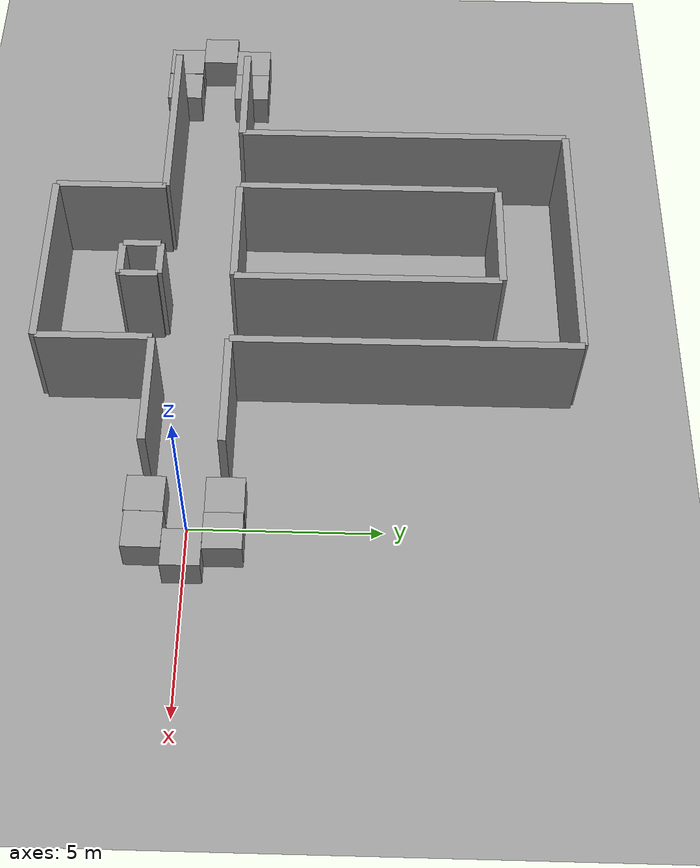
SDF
<sdf version="1.4">
 <world name="default">
  <light name="sun" type="directional">
   <pose>0 0 10 0 -0 0</pose>
   <diffuse>0.8 0.8 0.8 1</diffuse>
   <specular>0.2 0.2 0.2 1</specular>
   <attenuation>
    <range>1000</range>
    <constant>0.9</constant>
    <linear>0.01</linear>
    <quadratic>0.001</quadratic>
   </attenuation>
   <direction>0.5 0.1 -0.9</direction>
  </light>
  <scene><ambient>0.4 0.4 0.4 1</ambient><background>0.7 0.7 0.7 1</background><shadows>1</shadows></scene>
  <physics type="ode">
   <max_step_size>0.01</max_step_size>
   <real_time_factor>1</real_time_factor>
   <real_time_update_rate>100</real_time_update_rate>
   <gravity>0 0 -9.8</gravity>
  </physics>
  <model name="ground_plane_0">
   <static>1</static>
   <link name="link">
    <collision name="collision">
     <geometry><plane><normal>0 0 1</normal><size>100 100</size></plane></geometry>
     <surface><friction><ode><mu>100</mu><mu2>50</mu2></ode></friction></surface>
    </collision>
    <visual name="visual">
     <cast_shadows>0</cast_shadows>
     <geometry><plane><normal>0 0 1</normal><size>100 100</size></plane></geometry>
     <material>
      <script><uri>file://media/materials/scripts/gazebo.material</uri><name>Gazebo/Grey</name></script>
     </material>
    </visual>
    <velocity_decay><linear>0</linear><angular>0</angular></velocity_decay>
   </link>
   <pose>0.497681 0 0 0 -0 0</pose>
  </model>
  <spherical_coordinates>
   <surface_model>EARTH_WGS84</surface_model>
   <latitude_deg>0</latitude_deg>
   <longitude_deg>0</longitude_deg>
   <elevation>0</elevation>
   <heading_deg>0</heading_deg>
  </spherical_coordinates>
  <model name="grey_wall">
   <static>1</static>
   <link name="link">
    <pose>0 0 1.4 0 -0 0</pose>
    <collision name="collision"><geometry><box><size>3 0.2 2.8</size></box></geometry></collision>
    <visual name="visual">
     <cast_shadows>0</cast_shadows>
     <geometry><box><size>3 0.2 2.8</size></box></geometry>
     <material>
      <script>
       <uri>model://grey_wall/materials/scripts</uri>
       <uri>model://grey_wall/materials/textures</uri>
       <name>vrc/grey_wall</name>
      </script>
     </material>
    </visual>
    <velocity_decay><linear>0</linear><angular>0</angular></velocity_decay>
   </link>
   <pose>-2.47189 -0.984578 0 0 -0 0</pose>
  </model>
  <model name="grey_wall_0">
   <static>1</static>
   <link name="link">
    <pose>0 0 1.4 0 -0 0</pose>
    <collision name="collision"><geometry><box><size>3 0.2 2.8</size></box></geometry></collision>
    <visual name="visual">
     <cast_shadows>0</cast_shadows>
     <geometry><box><size>3 0.2 2.8</size></box></geometry>
     <material>
      <script>
       <uri>model://grey_wall/materials/scripts</uri>
       <uri>model://grey_wall/materials/textures</uri>
       <name>vrc/grey_wall</name>
      </script>
     </material>
    </visual>
    <velocity_decay><linear>0</linear><angular>0</angular></velocity_decay>
   </link>
   <pose>-2.47474 0.977193 0 0 -0 0</pose>
  </model>
  <model name="grey_wall_1">
   <static>1</static>
   <link name="link">
    <pose>0 0 1.4 0 -0 0</pose>
    <collision name="collision"><geometry><box><size>9 0.2 2.8</size></box></geometry></collision>
    <visual name="visual">
     <cast_shadows>0</cast_shadows>
     <geometry><box><size>9 0.2 2.8</size></box></geometry>
     <material>
      <script>
       <uri>model://grey_wall/materials/scripts</uri>
       <uri>model://grey_wall/materials/textures</uri>
       <name>vrc/grey_wall</name>
      </script>
     </material>
    </visual>
    <velocity_decay><linear>0</linear><angular>0</angular></velocity_decay>
   </link>
   <pose>-3.99318 5.48992 0 0 0 -1.57131</pose>
  </model>
  <model name="grey_wall_2">
   <static>1</static>
   <link name="link">
    <pose>0 0 1.4 0 -0 0</pose>
    <collision name="collision"><geometry><box><size>7 0.2 2.8</size></box></geometry></collision>
    <visual name="visual">
     <cast_shadows>0</cast_shadows>
     <geometry><box><size>7 0.2 2.8</size></box></geometry>
     <material>
      <script>
       <uri>model://grey_wall/materials/scripts</uri>
       <uri>model://grey_wall/materials/textures</uri>
       <name>vrc/grey_wall</name>
      </script>
     </material>
    </visual>
    <velocity_decay><linear>0</linear><angular>0</angular></velocity_decay>
   </link>
   <pose>-7.50665 9.96936 0 0 -0 0</pose>
  </model>
  <model name="grey_wall_3">
   <static>1</static>
   <link name="link">
    <pose>0 0 1.4 0 -0 0</pose>
    <collision name="collision"><geometry><box><size>9 0.2 2.8</size></box></geometry></collision>
    <visual name="visual">
     <cast_shadows>0</cast_shadows>
     <geometry><box><size>9 0.2 2.8</size></box></geometry>
     <material>
      <script>
       <uri>model://grey_wall/materials/scripts</uri>
       <uri>model://grey_wall/materials/textures</uri>
       <name>vrc/grey_wall</name>
      </script>
     </material>
    </visual>
    <velocity_decay><linear>0</linear><angular>0</angular></velocity_decay>
   </link>
   <pose>-11.0229 5.47748 0 0 -0 1.57103</pose>
  </model>
  <model name="grey_wall_4">
   <static>1</static>
   <link name="link">
    <pose>0 0 1.4 0 -0 0</pose>
    <collision name="collision"><geometry><box><size>7 0.2 2.8</size></box></geometry></collision>
    <visual name="visual">
     <cast_shadows>0</cast_shadows>
     <geometry><box><size>7 0.2 2.8</size></box></geometry>
     <material>
      <script>
       <uri>model://grey_wall/materials/scripts</uri>
       <uri>model://grey_wall/materials/textures</uri>
       <name>vrc/grey_wall</name>
      </script>
     </material>
    </visual>
    <velocity_decay><linear>0</linear><angular>0</angular></velocity_decay>
   </link>
   <pose>-9.08713 4.50434 0 0 -0 1.5692</pose>
  </model>
  <model name="grey_wall_5">
   <static>1</static>
   <link name="link">
    <pose>0 0 1.4 0 -0 0</pose>
    <collision name="collision"><geometry><box><size>3 0.2 2.8</size></box></geometry></collision>
    <visual name="visual">
     <cast_shadows>0</cast_shadows>
     <geometry><box><size>3 0.2 2.8</size></box></geometry>
     <material>
      <script>
       <uri>model://grey_wall/materials/scripts</uri>
       <uri>model://grey_wall/materials/textures</uri>
       <name>vrc/grey_wall</name>
      </script>
     </material>
    </visual>
    <velocity_decay><linear>0</linear><angular>0</angular></velocity_decay>
   </link>
   <pose>-7.51734 0.989359 0 0 -0 0</pose>
  </model>
  <model name="grey_wall_6">
   <static>1</static>
   <link name="link">
    <pose>0 0 1.4 0 -0 0</pose>
    <collision name="collision"><geometry><box><size>7 0.2 2.8</size></box></geometry></collision>
    <visual name="visual">
     <cast_shadows>0</cast_shadows>
     <geometry><box><size>7 0.2 2.8</size></box></geometry>
     <material>
      <script>
       <uri>model://grey_wall/materials/scripts</uri>
       <uri>model://grey_wall/materials/textures</uri>
       <name>vrc/grey_wall</name>
      </script>
     </material>
    </visual>
    <velocity_decay><linear>0</linear><angular>0</angular></velocity_decay>
   </link>
   <pose>-6.00544 4.4989 0 0 -0 1.57199</pose>
  </model>
  <model name="grey_wall_7">
   <static>1</static>
   <link name="link">
    <pose>0 0 1.4 0 -0 0</pose>
    <collision name="collision"><geometry><box><size>3 0.2 2.8</size></box></geometry></collision>
    <visual name="visual">
     <cast_shadows>0</cast_shadows>
     <geometry><box><size>3 0.2 2.8</size></box></geometry>
     <material>
      <script>
       <uri>model://grey_wall/materials/scripts</uri>
       <uri>model://grey_wall/materials/textures</uri>
       <name>vrc/grey_wall</name>
      </script>
     </material>
    </visual>
    <velocity_decay><linear>0</linear><angular>0</angular></velocity_decay>
   </link>
   <pose>-7.51739 8.01483 0 0 -0 0</pose>
  </model>
  <model name="grey_wall_8">
   <static>1</static>
   <link name="link">
    <pose>0 0 1.4 0 -0 0</pose>
    <collision name="collision"><geometry><box><size>3 0.2 2.8</size></box></geometry></collision>
    <visual name="visual">
     <cast_shadows>0</cast_shadows>
     <geometry><box><size>3 0.2 2.8</size></box></geometry>
     <material>
      <script>
       <uri>model://grey_wall/materials/scripts</uri>
       <uri>model://grey_wall/materials/textures</uri>
       <name>vrc/grey_wall</name>
      </script>
     </material>
    </visual>
    <velocity_decay><linear>0</linear><angular>0</angular></velocity_decay>
   </link>
   <pose>-12.4932 0.96091 0 0 -0 0</pose>
  </model>
  <model name="grey_wall_9">
   <static>1</static>
   <link name="link">
    <pose>0 0 1.4 0 -0 0</pose>
    <collision name="collision"><geometry><box><size>5 0.2 2.8</size></box></geometry></collision>
    <visual name="visual">
     <cast_shadows>0</cast_shadows>
     <geometry><box><size>5 0.2 2.8</size></box></geometry>
     <material>
      <script>
       <uri>model://grey_wall/materials/scripts</uri>
       <uri>model://grey_wall/materials/textures</uri>
       <name>vrc/grey_wall</name>
      </script>
     </material>
    </visual>
    <velocity_decay><linear>0</linear><angular>0</angular></velocity_decay>
   </link>
   <pose>-11.5034 -1.02232 0 0 -0 0</pose>
  </model>
  <model name="grey_wall_10">
   <static>1</static>
   <link name="link">
    <pose>0 0 1.4 0 -0 0</pose>
    <collision name="collision"><geometry><box><size>3 0.2 2.8</size></box></geometry></collision>
    <visual name="visual">
     <cast_shadows>0</cast_shadows>
     <geometry><box><size>3 0.2 2.8</size></box></geometry>
     <material>
      <script>
       <uri>model://grey_wall/materials/scripts</uri>
       <uri>model://grey_wall/materials/textures</uri>
       <name>vrc/grey_wall</name>
      </script>
     </material>
    </visual>
    <velocity_decay><linear>0</linear><angular>0</angular></velocity_decay>
   </link>
   <pose>-9.01593 -2.51689 0 0 -0 1.57004</pose>
  </model>
  <model name="grey_wall_11">
   <static>1</static>
   <link name="link">
    <pose>0 0 1.4 0 -0 0</pose>
    <collision name="collision"><geometry><box><size>5 0.2 2.8</size></box></geometry></collision>
    <visual name="visual">
     <cast_shadows>0</cast_shadows>
     <geometry><box><size>5 0.2 2.8</size></box></geometry>
     <material>
      <script>
       <uri>model://grey_wall/materials/scripts</uri>
       <uri>model://grey_wall/materials/textures</uri>
       <name>vrc/grey_wall</name>
      </script>
     </material>
    </visual>
    <velocity_decay><linear>0</linear><angular>0</angular></velocity_decay>
   </link>
   <pose>-6.49283 -4.01504 0 0 -0 0</pose>
  </model>
  <model name="grey_wall_12">
   <static>1</static>
   <link name="link">
    <pose>0 0 1.4 0 -0 0</pose>
    <collision name="collision"><geometry><box><size>3 0.2 2.8</size></box></geometry></collision>
    <visual name="visual">
     <cast_shadows>0</cast_shadows>
     <geometry><box><size>3 0.2 2.8</size></box></geometry>
     <material>
      <script>
       <uri>model://grey_wall/materials/scripts</uri>
       <uri>model://grey_wall/materials/textures</uri>
       <name>vrc/grey_wall</name>
      </script>
     </material>
    </visual>
    <velocity_decay><linear>0</linear><angular>0</angular></velocity_decay>
   </link>
   <pose>-4.00131 -2.46947 0 0 -0 1.57383</pose>
  </model>
  <model name="grey_wall_13">
   <static>1</static>
   <link name="link">
    <pose>0 0 1.4 0 -0 0</pose>
    <collision name="collision"><geometry><box><size>1 0.2 2.8</size></box></geometry></collision>
    <visual name="visual">
     <cast_shadows>0</cast_shadows>
     <geometry><box><size>1 0.2 2.8</size></box></geometry>
     <material>
      <script>
       <uri>model://grey_wall/materials/scripts</uri>
       <uri>model://grey_wall/materials/textures</uri>
       <name>vrc/grey_wall</name>
      </script>
     </material>
    </visual>
    <velocity_decay><linear>0</linear><angular>0</angular></velocity_decay>
   </link>
   <pose>-6.016 -1.50363 0 0 -0 1.57147</pose>
  </model>
  <model name="grey_wall_14">
   <static>1</static>
   <link name="link">
    <pose>0 0 1.4 0 -0 0</pose>
    <collision name="collision"><geometry><box><size>1 0.2 2.8</size></box></geometry></collision>
    <visual name="visual">
     <cast_shadows>0</cast_shadows>
     <geometry><box><size>1 0.2 2.8</size></box></geometry>
     <material>
      <script>
       <uri>model://grey_wall/materials/scripts</uri>
       <uri>model://grey_wall/materials/textures</uri>
       <name>vrc/grey_wall</name>
      </script>
     </material>
    </visual>
    <velocity_decay><linear>0</linear><angular>0</angular></velocity_decay>
   </link>
   <pose>-6.4964 -2.0032 0 0 -0 0</pose>
  </model>
  <model name="grey_wall_15">
   <static>1</static>
   <link name="link">
    <pose>0 0 1.4 0 -0 0</pose>
    <collision name="collision"><geometry><box><size>1 0.2 2.8</size></box></geometry></collision>
    <visual name="visual">
     <cast_shadows>0</cast_shadows>
     <geometry><box><size>1 0.2 2.8</size></box></geometry>
     <material>
      <script>
       <uri>model://grey_wall/materials/scripts</uri>
       <uri>model://grey_wall/materials/textures</uri>
       <name>vrc/grey_wall</name>
      </script>
     </material>
    </visual>
    <velocity_decay><linear>0</linear><angular>0</angular></velocity_decay>
   </link>
   <pose>-7.01196 -1.49374 0 0 -0 1.57425</pose>
  </model>
  <model name="grey_wall_16">
   <static>1</static>
   <link name="link">
    <pose>0 0 1.4 0 -0 0</pose>
    <collision name="collision"><geometry><box><size>1 0.2 2.8</size></box></geometry></collision>
    <visual name="visual">
     <cast_shadows>0</cast_shadows>
     <geometry><box><size>1 0.2 2.8</size></box></geometry>
     <material>
      <script>
       <uri>model://grey_wall/materials/scripts</uri>
       <uri>model://grey_wall/materials/textures</uri>
       <name>vrc/grey_wall</name>
      </script>
     </material>
    </visual>
    <velocity_decay><linear>0</linear><angular>0</angular></velocity_decay>
   </link>
   <pose>-6.50605 -0.984501 0 0 -0 0</pose>
  </model>
  <model name="unit_box_6">
   <pose>-14.5101 -1 0.5 0 -0 0</pose>
   <link name="link">
    <inertial>
     <mass>1</mass>
     <inertia><ixx>1</ixx><ixy>0</ixy><ixz>0</ixz><iyy>1</iyy><iyz>0</iyz><izz>1</izz></inertia>
    </inertial>
    <collision name="collision"><geometry><box><size>1 1 1</size></box></geometry></collision>
    <visual name="visual">
     <geometry><box><size>1 1 1</size></box></geometry>
     <material>
      <script><uri>file://media/materials/scripts/gazebo.material</uri><name>Gazebo/Grey</name></script>
     </material>
    </visual>
    <velocity_decay><linear>0</linear><angular>0</angular></velocity_decay>
   </link>
   <static>0</static>
  </model>
  <model name="unit_box_7">
   <pose>-14.4937 1.00177 0.5 0 0 -0.003541</pose>
   <link name="link">
    <inertial>
     <mass>1</mass>
     <inertia><ixx>1</ixx><ixy>0</ixy><ixz>0</ixz><iyy>1</iyy><iyz>0</iyz><izz>1</izz></inertia>
    </inertial>
    <collision name="collision"><geometry><box><size>1 1 1</size></box></geometry></collision>
    <visual name="visual">
     <geometry><box><size>1 1 1</size></box></geometry>
     <material>
      <script><uri>file://media/materials/scripts/gazebo.material</uri><name>Gazebo/Grey</name></script>
     </material>
    </visual>
    <velocity_decay><linear>0</linear><angular>0</angular></velocity_decay>
   </link>
   <static>0</static>
  </model>
  <model name="unit_box_8">
   <pose>-16 0 0.5 -0 -0 -0</pose>
   <link name="link">
    <inertial>
     <mass>1</mass>
     <inertia><ixx>1</ixx><ixy>0</ixy><ixz>0</ixz><iyy>1</iyy><iyz>0</iyz><izz>1</izz></inertia>
    </inertial>
    <collision name="collision"><geometry><box><size>1 1 1</size></box></geometry></collision>
    <visual name="visual">
     <geometry><box><size>1 1 1</size></box></geometry>
     <material>
      <script><uri>file://media/materials/scripts/gazebo.material</uri><name>Gazebo/Grey</name></script>
     </material>
    </visual>
    <velocity_decay><linear>0</linear><angular>0</angular></velocity_decay>
   </link>
   <static>0</static>
  </model>
  <model name="unit_box_9">
   <pose>-15.5197 -1 0.5 0 -0 0</pose>
   <link name="link">
    <inertial>
     <mass>1</mass>
     <inertia><ixx>1</ixx><ixy>0</ixy><ixz>0</ixz><iyy>1</iyy><iyz>0</iyz><izz>1</izz></inertia>
    </inertial>
    <collision name="collision"><geometry><box><size>1 1 1</size></box></geometry></collision>
    <visual name="visual">
     <geometry><box><size>1 1 1</size></box></geometry>
     <material>
      <script><uri>file://media/materials/scripts/gazebo.material</uri><name>Gazebo/Grey</name></script>
     </material>
    </visual>
    <velocity_decay><linear>0</linear><angular>0</angular></velocity_decay>
   </link>
   <static>0</static>
  </model>
  <model name="unit_box_10">
   <pose>-15.495 1.00371 0.5 0 -0 -0.001144</pose>
   <link name="link">
    <inertial>
     <mass>1</mass>
     <inertia><ixx>1</ixx><ixy>0</ixy><ixz>0</ixz><iyy>1</iyy><iyz>0</iyz><izz>1</izz></inertia>
    </inertial>
    <collision name="collision"><geometry><box><size>1 1 1</size></box></geometry></collision>
    <visual name="visual">
     <geometry><box><size>1 1 1</size></box></geometry>
     <material>
      <script><uri>file://media/materials/scripts/gazebo.material</uri><name>Gazebo/Grey</name></script>
     </material>
    </visual>
    <velocity_decay><linear>0</linear><angular>0</angular></velocity_decay>
   </link>
   <static>0</static>
  </model>
  <model name="unit_box_1_0">
   <pose>-0.470457 -1.01026 0.5 0 0 -0.018179</pose>
   <link name="link">
    <inertial>
     <mass>1</mass>
     <inertia><ixx>1</ixx><ixy>0</ixy><ixz>0</ixz><iyy>1</iyy><iyz>0</iyz><izz>1</izz></inertia>
    </inertial>
    <collision name="collision"><geometry><box><size>1 1 1</size></box></geometry></collision>
    <visual name="visual">
     <geometry><box><size>1 1 1</size></box></geometry>
     <material>
      <script><uri>file://media/materials/scripts/gazebo.material</uri><name>Gazebo/Grey</name></script>
     </material>
    </visual>
    <velocity_decay><linear>0</linear><angular>0</angular></velocity_decay>
   </link>
   <static>0</static>
  </model>
  <model name="unit_box_2_0">
   <pose>-0.474171 1.00687 0.5 0 -0 0.007875</pose>
   <link name="link">
    <inertial>
     <mass>1</mass>
     <inertia><ixx>1</ixx><ixy>0</ixy><ixz>0</ixz><iyy>1</iyy><iyz>0</iyz><izz>1</izz></inertia>
    </inertial>
    <collision name="collision"><geometry><box><size>1 1 1</size></box></geometry></collision>
    <visual name="visual">
     <geometry><box><size>1 1 1</size></box></geometry>
     <material>
      <script><uri>file://media/materials/scripts/gazebo.material</uri><name>Gazebo/Grey</name></script>
     </material>
    </visual>
    <velocity_decay><linear>0</linear><angular>0</angular></velocity_decay>
   </link>
   <static>0</static>
  </model>
  <model name="unit_box_3_0">
   <pose>0.530886 -0.997888 0.5 -0 -0 -0.016162</pose>
   <link name="link">
    <inertial>
     <mass>1</mass>
     <inertia><ixx>1</ixx><ixy>0</ixy><ixz>0</ixz><iyy>1</iyy><iyz>0</iyz><izz>1</izz></inertia>
    </inertial>
    <collision name="collision"><geometry><box><size>1 1 1</size></box></geometry></collision>
    <visual name="visual">
     <geometry><box><size>1 1 1</size></box></geometry>
     <material>
      <script><uri>file://media/materials/scripts/gazebo.material</uri><name>Gazebo/Grey</name></script>
     </material>
    </visual>
    <velocity_decay><linear>0</linear><angular>0</angular></velocity_decay>
   </link>
   <static>0</static>
  </model>
  <model name="unit_box_4_0">
   <pose>0.525916 1.00295 0.5 0 -0 0.007891</pose>
   <link name="link">
    <inertial>
     <mass>1</mass>
     <inertia><ixx>1</ixx><ixy>0</ixy><ixz>0</ixz><iyy>1</iyy><iyz>0</iyz><izz>1</izz></inertia>
    </inertial>
    <collision name="collision"><geometry><box><size>1 1 1</size></box></geometry></collision>
    <visual name="visual">
     <geometry><box><size>1 1 1</size></box></geometry>
     <material>
      <script><uri>file://media/materials/scripts/gazebo.material</uri><name>Gazebo/Grey</name></script>
     </material>
    </visual>
    <velocity_decay><linear>0</linear><angular>0</angular></velocity_decay>
   </link>
   <static>0</static>
  </model>
  <model name="unit_box_5_0">
   <pose>1.00053 0.00212 0.5 0 0 -0.00116</pose>
   <link name="link">
    <inertial>
     <mass>1</mass>
     <inertia><ixx>1</ixx><ixy>0</ixy><ixz>0</ixz><iyy>1</iyy><iyz>0</iyz><izz>1</izz></inertia>
    </inertial>
    <collision name="collision"><geometry><box><size>1 1 1</size></box></geometry></collision>
    <visual name="visual">
     <geometry><box><size>1 1 1</size></box></geometry>
     <material>
      <script><uri>file://media/materials/scripts/gazebo.material</uri><name>Gazebo/Grey</name></script>
     </material>
    </visual>
    <velocity_decay><linear>0</linear><angular>0</angular></velocity_decay>
   </link>
   <static>0</static>
  </model>
 </world>
</sdf>
